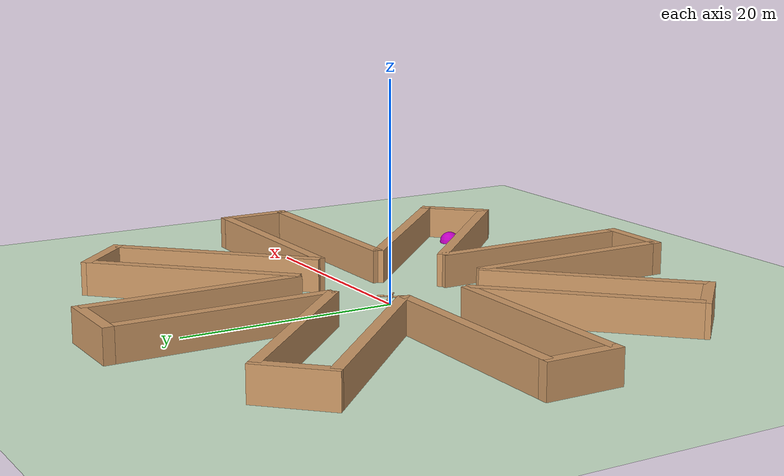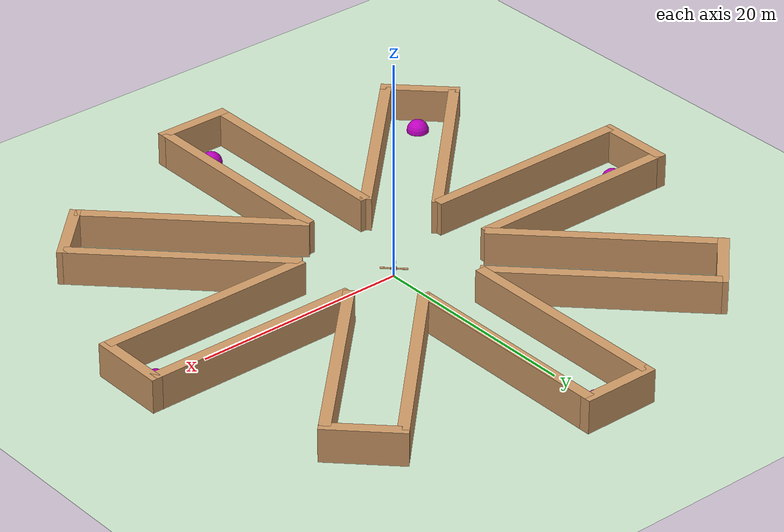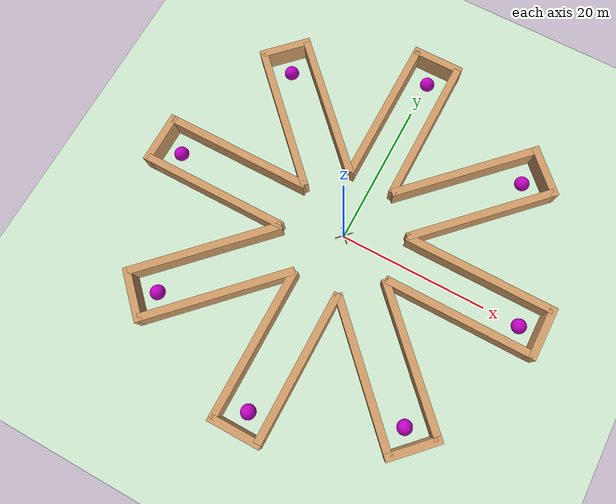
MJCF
<!-- Same a gym ant but with gear ratio of 30 and sites -->
<mujoco model="ant">
    <compiler angle="degree" coordinate="local" inertiafromgeom="true"/>
    <option integrator="RK4" timestep="0.01"/>
    <custom>
        <numeric data="0.0 0.0 0.55 1.0 0.0 0.0 0.0 0.0 1.0 0.0 -1.0 0.0 -1.0 0.0 1.0" name="init_qpos"/>
    </custom>
    <default>
        <joint armature="1" damping="1" limited="true"/>
        <geom conaffinity="0" condim="3" density="5.0" friction="1 0.5 0.5" margin="0.01" rgba="0.8 0.6 0.4 1"/>
    </default>
    <asset>
        <texture builtin="gradient" height="100" rgb1="1 1 1" rgb2="0 0 0" type="skybox" width="100"/>
        <texture builtin="flat" height="1278" mark="cross" markrgb="1 1 1" name="texgeom" random="0.01" rgb1="0.8 0.6 0.4" rgb2="0.8 0.6 0.4" type="cube" width="127"/>
        <texture builtin="checker" height="100" name="texplane" rgb1="0 0 0" rgb2="0.8 0.8 0.8" type="2d" width="100"/>
        <material name="MatPlane" reflectance="0.5" shininess="1" specular="1" texrepeat="60 60" texture="texplane"/>
        <material name="geom" texture="texgeom" texuniform="true"/>
    </asset>
    <worldbody>
        <light cutoff="100" diffuse="1 1 1" dir="-0 0 -1.3" directional="true" exponent="1" pos="0 0 1.3" specular=".1 .1 .1"/>
        <geom conaffinity="1" condim="3" material="MatPlane" name="floor" pos="0 0 0" rgba="0.8 0.9 0.8 1" size="40 40 40" type="plane"/>
        <body name="torso" pos="0 0 0.75">
            <geom name="torso_geom" pos="0 0 0" size="0.25" type="sphere"/>
            <joint armature="0" damping="0" limited="false" margin="0.01" name="root" pos="0 0 0" type="free"/>
            <body name="front_left_leg" pos="0 0 0">
                <geom fromto="0.0 0.0 0.0 0.2 0.2 0.0" name="aux_1_geom" size="0.08" type="capsule"/>
                <body name="aux_1" pos="0.2 0.2 0">
                    <joint axis="0 0 1" name="hip_1" pos="0.0 0.0 0.0" range="-30 30" type="hinge"/>
                    <geom fromto="0.0 0.0 0.0 0.2 0.2 0.0" name="left_leg_geom" size="0.08" type="capsule"/>
                    <body pos="0.2 0.2 0">
                        <joint axis="-1 1 0" name="ankle_1" pos="0.0 0.0 0.0" range="30 70" type="hinge"/>
                        <geom fromto="0.0 0.0 0.0 0.4 0.4 0.0" name="left_ankle_geom" size="0.08" type="capsule"/>
                    </body>
                </body>
            </body>
            <body name="front_right_leg" pos="0 0 0">
                <geom fromto="0.0 0.0 0.0 -0.2 0.2 0.0" name="aux_2_geom" size="0.08" type="capsule"/>
                <body name="aux_2" pos="-0.2 0.2 0">
                    <joint axis="0 0 1" name="hip_2" pos="0.0 0.0 0.0" range="-30 30" type="hinge"/>
                    <geom fromto="0.0 0.0 0.0 -0.2 0.2 0.0" name="right_leg_geom" size="0.08" type="capsule"/>
                    <body pos="-0.2 0.2 0">
                        <joint axis="1 1 0" name="ankle_2" pos="0.0 0.0 0.0" range="-70 -30" type="hinge"/>
                        <geom fromto="0.0 0.0 0.0 -0.4 0.4 0.0" name="right_ankle_geom" size="0.08" type="capsule"/>
                    </body>
                </body>
            </body>
            <body name="back_leg" pos="0 0 0">
                <geom fromto="0.0 0.0 0.0 -0.2 -0.2 0.0" name="aux_3_geom" size="0.08" type="capsule"/>
                <body name="aux_3" pos="-0.2 -0.2 0">
                    <joint axis="0 0 1" name="hip_3" pos="0.0 0.0 0.0" range="-30 30" type="hinge"/>
                    <geom fromto="0.0 0.0 0.0 -0.2 -0.2 0.0" name="back_leg_geom" size="0.08" type="capsule"/>
                    <body pos="-0.2 -0.2 0">
                        <joint axis="-1 1 0" name="ankle_3" pos="0.0 0.0 0.0" range="-70 -30" type="hinge"/>
                        <geom fromto="0.0 0.0 0.0 -0.4 -0.4 0.0" name="third_ankle_geom" size="0.08" type="capsule"/>
                    </body>
                </body>
            </body>
            <body name="right_back_leg" pos="0 0 0">
                <geom fromto="0.0 0.0 0.0 0.2 -0.2 0.0" name="aux_4_geom" size="0.08" type="capsule"/>
                <body name="aux_4" pos="0.2 -0.2 0">
                    <joint axis="0 0 1" name="hip_4" pos="0.0 0.0 0.0" range="-30 30" type="hinge"/>
                    <geom fromto="0.0 0.0 0.0 0.2 -0.2 0.0" name="rightback_leg_geom" size="0.08" type="capsule"/>
                    <body pos="0.2 -0.2 0">
                        <joint axis="1 1 0" name="ankle_4" pos="0.0 0.0 0.0" range="30 70" type="hinge"/>
                        <geom fromto="0.0 0.0 0.0 0.4 -0.4 0.0" name="fourth_ankle_geom" size="0.08" type="capsule"/>
                    </body>
                </body>
            </body>
        </body>

<body mocap="true" pos="17.39 -3.06 1" euler="0 0 0.00">
        <geom type="box" size="10.0 0.5 2" group="1" condim="3" conaffinity="1"/>
</body>
<body mocap="true" pos="17.39 3.06 1" euler="0 0 0.00">
        <geom type="box" size="10.0 0.5 2" group="1" condim="3" conaffinity="1"/>
</body>
<body mocap="true" pos="27.39 0.00 1" euler="0 0 90.00">
        <geom type="box" size="3.5614674589207183 0.5 2" group="1" condim="3" conaffinity="1"/>
</body>
<body mocap="true" pos="14.46 10.13 1" euler="0 0 45.00">
        <geom type="box" size="10.0 0.5 2" group="1" condim="3" conaffinity="1"/>
</body>
<body mocap="true" pos="10.13 14.46 1" euler="0 0 45.00">
        <geom type="box" size="10.0 0.5 2" group="1" condim="3" conaffinity="1"/>
</body>
<body mocap="true" pos="19.37 19.37 1" euler="0 0 135.00">
        <geom type="box" size="3.561467458920719 0.5 2" group="1" condim="3" conaffinity="1"/>
</body>
<body mocap="true" pos="3.06 17.39 1" euler="0 0 90.00">
        <geom type="box" size="10.0 0.5 2" group="1" condim="3" conaffinity="1"/>
</body>
<body mocap="true" pos="-3.06 17.39 1" euler="0 0 90.00">
        <geom type="box" size="10.0 0.5 2" group="1" condim="3" conaffinity="1"/>
</body>
<body mocap="true" pos="0.00 27.39 1" euler="0 0 180.00">
        <geom type="box" size="3.5614674589207183 0.5 2" group="1" condim="3" conaffinity="1"/>
</body>
<body mocap="true" pos="-10.13 14.46 1" euler="0 0 135.00">
        <geom type="box" size="10.0 0.5 2" group="1" condim="3" conaffinity="1"/>
</body>
<body mocap="true" pos="-14.46 10.13 1" euler="0 0 135.00">
        <geom type="box" size="10.0 0.5 2" group="1" condim="3" conaffinity="1"/>
</body>
<body mocap="true" pos="-19.37 19.37 1" euler="0 0 225.00">
        <geom type="box" size="3.561467458920718 0.5 2" group="1" condim="3" conaffinity="1"/>
</body>
<body mocap="true" pos="-17.39 3.06 1" euler="0 0 180.00">
        <geom type="box" size="10.0 0.5 2" group="1" condim="3" conaffinity="1"/>
</body>
<body mocap="true" pos="-17.39 -3.06 1" euler="0 0 180.00">
        <geom type="box" size="10.0 0.5 2" group="1" condim="3" conaffinity="1"/>
</body>
<body mocap="true" pos="-27.39 0.00 1" euler="0 0 270.00">
        <geom type="box" size="3.5614674589207183 0.5 2" group="1" condim="3" conaffinity="1"/>
</body>
<body mocap="true" pos="-14.46 -10.13 1" euler="0 0 225.00">
        <geom type="box" size="10.0 0.5 2" group="1" condim="3" conaffinity="1"/>
</body>
<body mocap="true" pos="-10.13 -14.46 1" euler="0 0 225.00">
        <geom type="box" size="10.0 0.5 2" group="1" condim="3" conaffinity="1"/>
</body>
<body mocap="true" pos="-19.37 -19.37 1" euler="0 0 315.00">
        <geom type="box" size="3.561467458920715 0.5 2" group="1" condim="3" conaffinity="1"/>
</body>
<body mocap="true" pos="-3.06 -17.39 1" euler="0 0 270.00">
        <geom type="box" size="10.0 0.5 2" group="1" condim="3" conaffinity="1"/>
</body>
<body mocap="true" pos="3.06 -17.39 1" euler="0 0 270.00">
        <geom type="box" size="10.0 0.5 2" group="1" condim="3" conaffinity="1"/>
</body>
<body mocap="true" pos="-0.00 -27.39 1" euler="0 0 360.00">
        <geom type="box" size="3.5614674589207214 0.5 2" group="1" condim="3" conaffinity="1"/>
</body>
<body mocap="true" pos="10.13 -14.46 1" euler="0 0 315.00">
        <geom type="box" size="10.0 0.5 2" group="1" condim="3" conaffinity="1"/>
</body>
<body mocap="true" pos="14.46 -10.13 1" euler="0 0 315.00">
        <geom type="box" size="10.0 0.5 2" group="1" condim="3" conaffinity="1"/>
</body>
<body mocap="true" pos="19.37 -19.37 1" euler="0 0 405.00">
        <geom type="box" size="3.561467458920714 0.5 2" group="1" condim="3" conaffinity="1"/>
</body>
<site name="target0" pos="25.00 0.00 .01" rgba="0.75 0 0.75 1" type="sphere" size="1"/>
<site name="target1" pos="17.68 17.68 .01" rgba="0.75 0 0.75 1" type="sphere" size="1"/>
<site name="target2" pos="0.00 25.00 .01" rgba="0.75 0 0.75 1" type="sphere" size="1"/>
<site name="target3" pos="-17.68 17.68 .01" rgba="0.75 0 0.75 1" type="sphere" size="1"/>
<site name="target4" pos="-25.00 0.00 .01" rgba="0.75 0 0.75 1" type="sphere" size="1"/>
<site name="target5" pos="-17.68 -17.68 .01" rgba="0.75 0 0.75 1" type="sphere" size="1"/>
<site name="target6" pos="-0.00 -25.00 .01" rgba="0.75 0 0.75 1" type="sphere" size="1"/>
<site name="target7" pos="17.68 -17.68 .01" rgba="0.75 0 0.75 1" type="sphere" size="1"/>

    </worldbody>
    <actuator>
        <motor ctrllimited="true" ctrlrange="-1.0 1.0" joint="hip_4" gear="30"/>
        <motor ctrllimited="true" ctrlrange="-1.0 1.0" joint="ankle_4" gear="30"/>
        <motor ctrllimited="true" ctrlrange="-1.0 1.0" joint="hip_1" gear="30"/>
        <motor ctrllimited="true" ctrlrange="-1.0 1.0" joint="ankle_1" gear="30"/>
        <motor ctrllimited="true" ctrlrange="-1.0 1.0" joint="hip_2" gear="30"/>
        <motor ctrllimited="true" ctrlrange="-1.0 1.0" joint="ankle_2" gear="30"/>
        <motor ctrllimited="true" ctrlrange="-1.0 1.0" joint="hip_3" gear="30"/>
        <motor ctrllimited="true" ctrlrange="-1.0 1.0" joint="ankle_3" gear="30"/>
    </actuator>
</mujoco>
